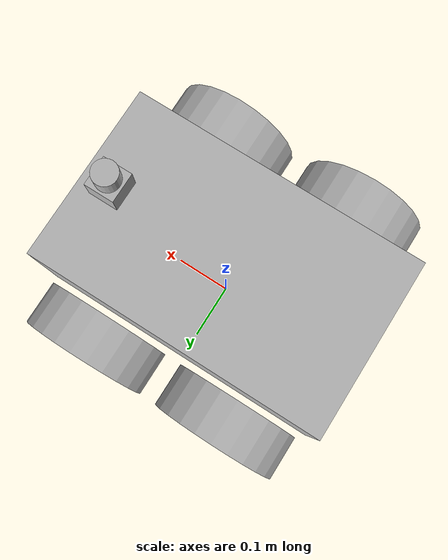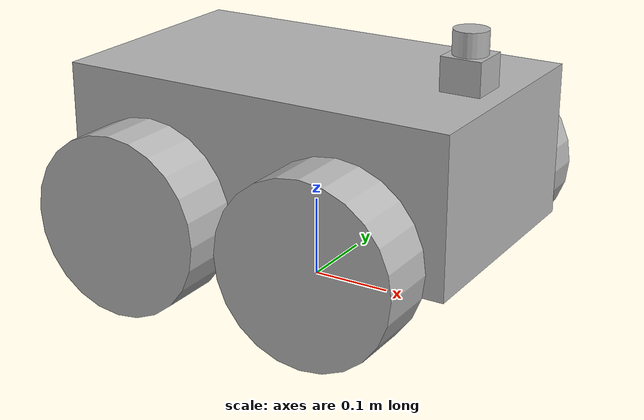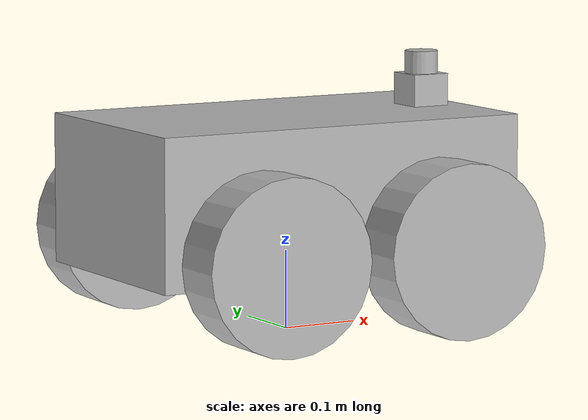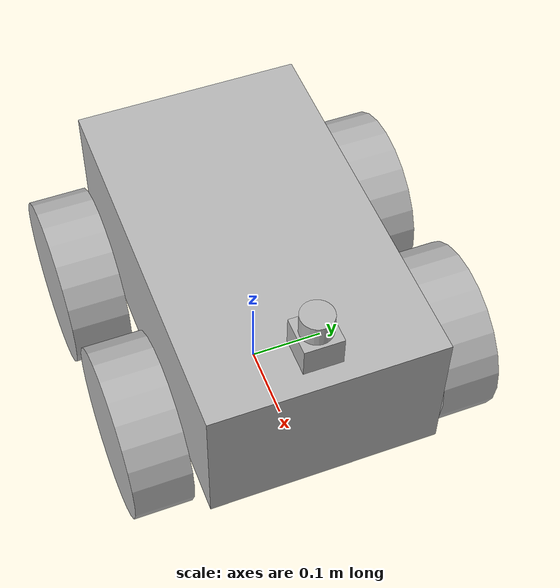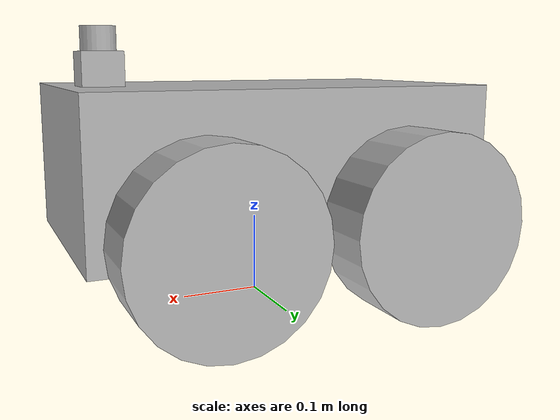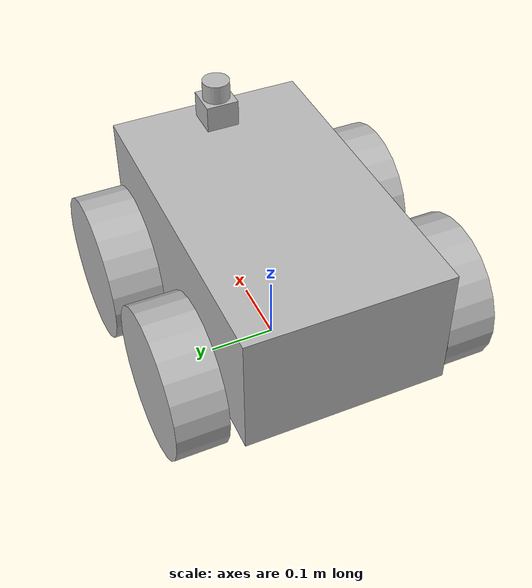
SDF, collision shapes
<?xml version="1.0" ?>
<sdf version="1.5">
  <model name="pioneer3at">
    <pose>0 0 0.180 0 0 0</pose>
    <static>false</static>
    <link name="chassis">
      <inertial>
        <mass>14.0</mass>
        <inertia>
          <ixx>0.147116667</ixx>
          <iyy>0.334951167</iyy>
          <izz>0.3978345</izz>
	  <ixy>0.0</ixy>
          <ixz>0.0</ixz>
          <iyz>0.0</iyz>
        </inertia>
      </inertial>
      <collision name="collision">
        <geometry>
          <box>
            <size>0.501 0.300 0.19</size>
          </box>
        </geometry>
      </collision>
      <visual name="visual">
        <geometry>
          <mesh>
            <uri>model://pioneer3at/meshes/chassis.dae</uri>
          </mesh>
        </geometry>
      </visual>
    </link>
    <link name="right_front_wheel">
      <pose>0.125 -0.201 -0.06 1.5707 0 0</pose>

      <inertial>
        <mass>1.5</mass>
        <inertia>
          <ixx>0.005240625</ixx>
          <iyy>0.005240625</iyy>
          <izz>0.009075</izz>
          <ixy>0</ixy>
          <ixz>0</ixz>
          <iyz>0</iyz>
        </inertia>
      </inertial>

      <collision name="collision">
        <geometry>
          <cylinder>
            <radius>0.110</radius>
            <length>0.075</length>
          </cylinder>
        </geometry>
        <surface>
          <friction>
            <ode>
              <mu>100000.0</mu>
              <mu2>100000.0</mu2>
              <slip1>0</slip1>
              <slip2>0</slip2>
            </ode>
          </friction>
        </surface>
      </collision>
      <visual name="visual">
        <geometry>
          <mesh>
            <uri>model://pioneer3at/meshes/wheel.dae</uri>
          </mesh>
        </geometry>
      </visual>
    </link>
    <link name="left_front_wheel">
      <pose>0.125 0.201 -0.06 1.5707 0 0</pose>

      <inertial>
        <mass>1.5</mass>
        <inertia>
          <ixx>0.005240625</ixx>
          <iyy>0.005240625</iyy>
          <izz>0.009075</izz>
          <ixy>0</ixy>
          <ixz>0</ixz>
          <iyz>0</iyz>
        </inertia>
      </inertial>

      <collision name="collision">
        <geometry>
          <cylinder>
            <radius>0.110</radius>
            <length>0.075</length>
          </cylinder>
        </geometry>
        <surface>
          <friction>
            <ode>
              <mu>100000.0</mu>
              <mu2>100000.0</mu2>
              <slip1>0</slip1>
              <slip2>0</slip2>
            </ode>
          </friction>
        </surface>
      </collision>
      <visual name="visual">
        <geometry>
          <mesh>
            <uri>model://pioneer3at/meshes/wheel.dae</uri>
          </mesh>
        </geometry>
      </visual>
    </link>
    <link name="right_rear_wheel">
      <pose>-0.125 -0.201 -0.06 1.5707 0 0</pose>

      <inertial>
        <mass>1.5</mass>
        <inertia>
          <ixx>0.005240625</ixx>
          <iyy>0.005240625</iyy>
          <izz>0.009075</izz>
          <ixy>0</ixy>
          <ixz>0</ixz>
          <iyz>0</iyz>
        </inertia>
      </inertial>

      <collision name="collision">
        <geometry>
          <cylinder>
            <radius>0.110</radius>
            <length>0.075</length>
          </cylinder>
        </geometry>
        <surface>
          <friction>
            <ode>
              <mu>100000.0</mu>
              <mu2>100000.0</mu2>
              <slip1>0</slip1>
              <slip2>0</slip2>
            </ode>
          </friction>
        </surface>
      </collision>
      <visual name="visual">
        <geometry>
          <mesh>
            <uri>model://pioneer3at/meshes/wheel.dae</uri>
          </mesh>
        </geometry>
      </visual>
    </link>
    <link name="left_rear_wheel">
      <pose>-0.125 0.201 -0.06 1.5707 0 0</pose>

      <inertial>
        <mass>1.5</mass>
        <inertia>
          <ixx>0.005240625</ixx>
          <iyy>0.005240625</iyy>
          <izz>0.009075</izz>
          <ixy>0</ixy>
          <ixz>0</ixz>
          <iyz>0</iyz>
        </inertia>
      </inertial>

      <collision name="collision">
        <geometry>
          <cylinder>
            <radius>0.110</radius>
            <length>0.075</length>
          </cylinder>
        </geometry>
        <surface>
          <friction>
            <ode>
              <mu>100000.0</mu>
              <mu2>100000.0</mu2>
              <slip1>0</slip1>
              <slip2>0</slip2>
            </ode>
          </friction>
        </surface>
      </collision>
      <visual name="visual">
        <geometry>
          <mesh>
            <uri>model://pioneer3at/meshes/wheel.dae</uri>
          </mesh>
        </geometry>
      </visual>
    </link>
    <joint type="revolute" name="right_front">
      <pose>0 0 0 0 0 0</pose>
      <child>right_front_wheel</child>
      <parent>chassis</parent>
      <axis>
        <xyz>0 1 0</xyz>
        <use_parent_model_frame>true</use_parent_model_frame>
      </axis>
    </joint>
    <joint type="revolute" name="right_rear">
      <pose>0 0 0 0 0 0</pose>
      <child>right_rear_wheel</child>
      <parent>chassis</parent>
      <axis>
        <xyz>0 1 0</xyz>
        <use_parent_model_frame>true</use_parent_model_frame>
      </axis>
    </joint>
    <joint type="revolute" name="left_front">
      <pose>0 0 0 0 0 0</pose>
      <child>left_front_wheel</child>
      <parent>chassis</parent>
      <axis>
        <xyz>0 1 0</xyz>
        <use_parent_model_frame>true</use_parent_model_frame>
      </axis>
    </joint>
    <joint type="revolute" name="left_rear">
      <pose>0 0 0 0 0 0</pose>
      <child>left_rear_wheel</child>
      <parent>chassis</parent>
      <axis>
        <xyz>0 1 0</xyz>
        <use_parent_model_frame>true</use_parent_model_frame>
      </axis>
    </joint>

    <plugin name="skid_steer_drive" filename="libgazebo_ros_diff_drive.so">

       <ros>
          <namespace>/p3at</namespace>
        </ros>

	<updateRate>100.0</updateRate>

      <num_wheel_pairs>2</num_wheel_pairs>

      <right_joint>right_front</right_joint>
      <left_joint>left_front</left_joint>

      <right_joint>right_rear</right_joint>
      <left_joint>left_rear</left_joint>

       <wheel_separation>0.4</wheel_separation>
        <wheel_separation>0.4</wheel_separation>
        <wheel_diameter>0.215</wheel_diameter>
	<wheel_diameter>0.215</wheel_diameter>

      	<!-- limits -->
        <max_wheel_torque>35</max_wheel_torque>
        <max_wheel_acceleration>0.5</max_wheel_acceleration>

        <!-- output -->
        <publish_odom>true</publish_odom>
        <publish_odom_tf>true</publish_odom_tf>
        <publish_wheel_tf>true</publish_wheel_tf>

    </plugin>

    <!-- Add the laser range finder -->
       <link name="laser_link">
         <inertial>
           <!-- Mass of the laser range finder in kg -->
           <mass>0.1</mass>
         </inertial>
         <!-- Position is towards the front of the robot -->
         <!-- Laser finder is mounted on top -->
         <pose>0.2 0 0.13 0 0 0</pose>

         <!-- Add a mesh to make it more visually appealing -->
         <visual name="visual">
           <geometry>
             <mesh>

               <uri>model://hokuyo/meshes/hokuyo.dae</uri>
             </mesh>
           </geometry>
         </visual>

         <!-- Collision properties of the base of the laser range finder-->
         <collision name="collision-base">
           <pose>0 0 -0.0145 0 0 0</pose>
           <geometry>
             <box>
               <size>0.05 0.05 0.041</size>
             </box>
           </geometry>
         </collision>
         <!-- Collision properties of the top of the laser range finder-->
         <collision name="collision-top">
           <pose>0 0 0.0205 0 0 0</pose>
           <geometry>
             <cylinder>
               <radius>0.021</radius>
               <length>0.029</length>
             </cylinder>
           </geometry>
         </collision>

         <!-- Describes the type and properties of the sensor -->
	 <sensor name="laser" type="ray">
	   <pose>0.01 0 0.0175 0 -0 0</pose>
           <ray>
             <scan>
               <horizontal>
                 <samples>181</samples>
                 <resolution>1</resolution>
                 <min_angle>-1.57080</min_angle>
                 <max_angle>1.57080</max_angle>
               </horizontal>
             </scan>
             <range>
               <min>0.08</min>
               <max>20</max>
               <resolution>0.05</resolution>
             </range>
           </ray>
           <always_on>1</always_on>
           <update_rate>10</update_rate>
           <visualize>false</visualize>  <!-- set this to true if you want to visualize the rays -->

           <plugin name='laser' filename='libgazebo_ros_ray_sensor.so'>
             <ros>
               <namespace>/p3at</namespace>
	       <remapping>~/out:=scan</remapping>
             </ros>
             <output_type>sensor_msgs/LaserScan</output_type>
           </plugin>
	 </sensor>
       </link>

 <!-- Connect laser range finder to the robot's body -->
       <joint type="fixed" name="laser_joint">
         <child>laser_link</child>
         <parent>chassis</parent>
       </joint>

  </model>
</sdf>
